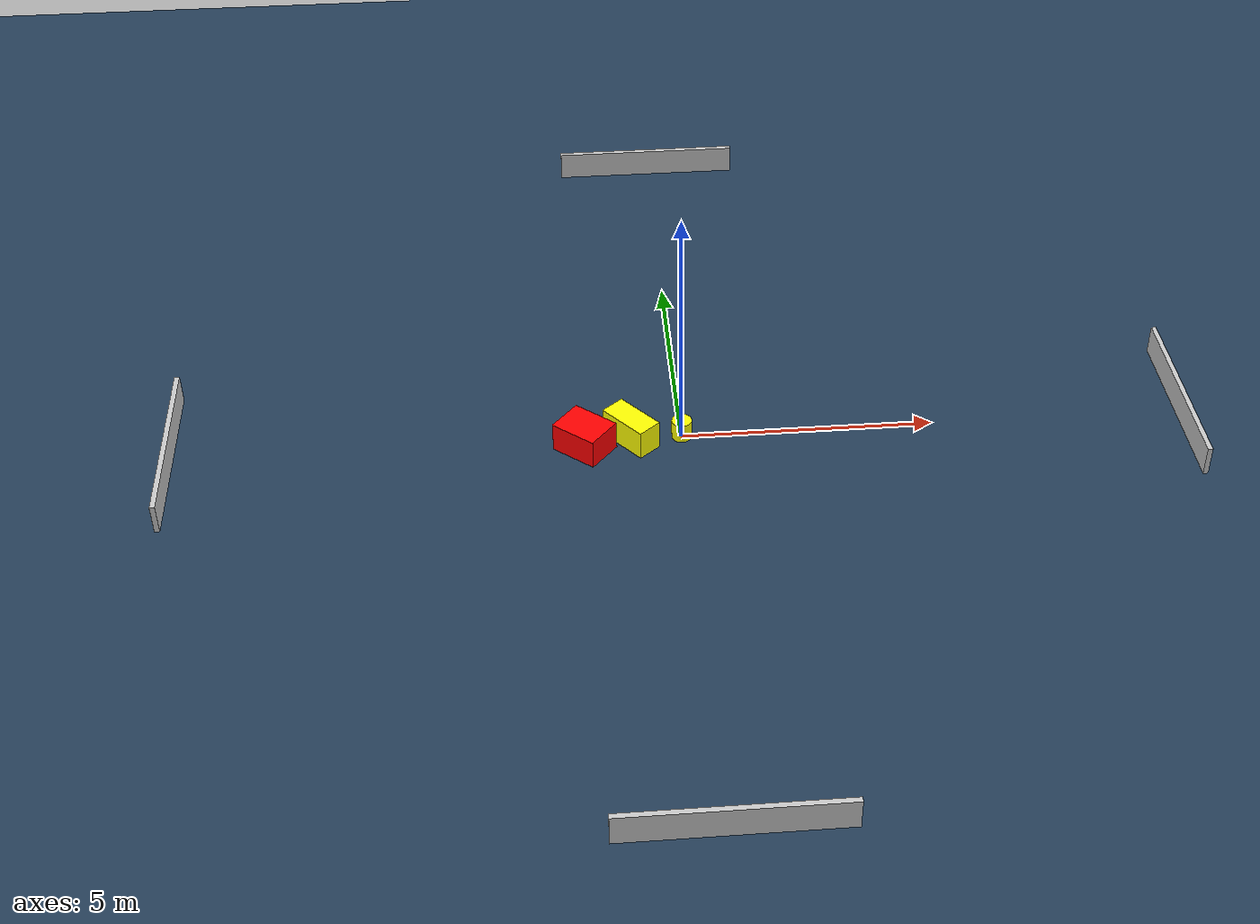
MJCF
<?xml version="1.0" ?>
<mujoco model="generated_environment">
  <option timestep="0.01" integrator="RK4" cone="elliptic"/>
  <default>
    <geom density="1"/>
  </default>
  <asset>
    <texture builtin="gradient" height="3072" name="skybox" rgb1="0.3 0.5 0.7" rgb2="0 0 0" type="skybox" width="512"/>
    <texture builtin="checker" height="300" name="groundplane" rgb1="0.2 0.3 0.4" rgb2="0.1 0.2 0.3" type="2d" width="300"/>
    <material name="groundplane" reflectance="0.2" texrepeat="5 5" texture="groundplane"/>
  </asset>
  <worldbody>
    <light dir="0 0 -1" directional="true" pos="0 0 1.5"/>
    <geom condim="3" friction="0.5 0.005 0.001" material="groundplane" name="floor" pos="0 0 0" size="0 0 0.05" type="plane"/>
    <body name="walls">
      <geom name="wall_1" condim="4" pos="-10.0 0.0 0.3" rgba="0.800000011920929 0.800000011920929 0.800000011920929 1.0" size="0.05 2.0 0.3" type="box"/>
      <geom name="wall_2" condim="4" pos="10.0 0.0 0.3" rgba="0.800000011920929 0.800000011920929 0.800000011920929 1.0" size="0.05 2.0 0.3" type="box"/>
      <geom name="wall_3" condim="4" pos="0.0 -10.0 0.3" rgba="0.800000011920929 0.800000011920929 0.800000011920929 1.0" size="2.0 0.05 0.3" type="box"/>
      <geom name="wall_4" condim="4" pos="0.0 10.0 0.3" rgba="0.800000011920929 0.800000011920929 0.800000011920929 1.0" size="2.0 0.05 0.3" type="box"/>
    </body>
    <body name="robot">
      <joint name="joint_x" type="slide" pos="0 0 0" axis="1 0 0"/>
      <joint name="joint_y" type="slide" pos="0 0 0" axis="0 1 0"/>
      <geom name="robot" type="cylinder" pos="0.0 0.0 0.2" size="0.2 0.2 0.0" mass="5.0" friction="1.0 0.005 0.0001" condim="4" rgba="1.0 1.0 0.0 1.0"/>
    </body>
    <body name="obstacle_1_movable">
      <geom name="obstacle_1_movable" condim="4" pos="-1.0006975833466099 -0.043793431403976936 0.3" euler="0 0 220.25724726885366" friction="0.0 0.005 0.001" rgba="1.0 1.0 0.0 1.0" size="0.25708758375378993 0.5328760719760361 0.3" type="box" mass="0.1"/>
      <joint type="free"/>
    </body>
    <body name="obstacle_2_static">
      <geom name="obstacle_2_static" condim="4" pos="-1.9232149691217209 -0.20831860541955033 0.3" euler="0 0 50.06437744793507" friction="0.0 0.005 0.001" rgba="1.0 0.0 0.0 1.0" size="0.38201471453279323 0.49158486373765287 0.3" type="box"/>
    </body>
  </worldbody>
  <actuator>
    <motor name="actuator_x" joint="joint_x" gear="1" ctrlrange="-1 1"/>
    <motor name="actuator_y" joint="joint_y" gear="1" ctrlrange="-1 1"/>
  </actuator>
</mujoco>
